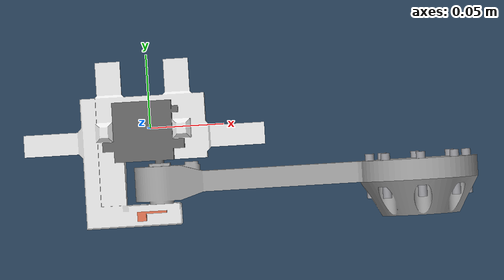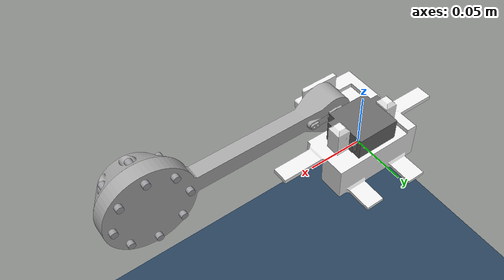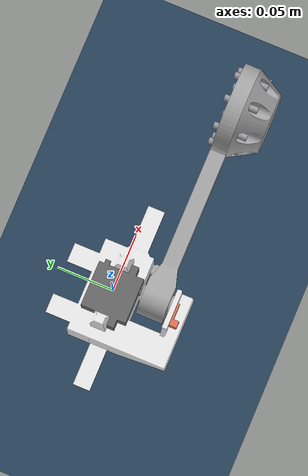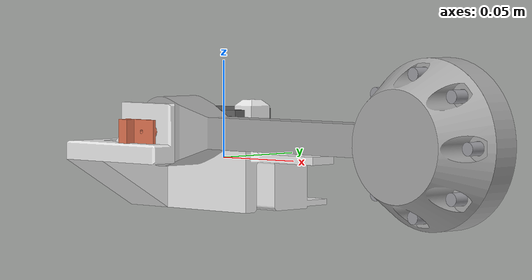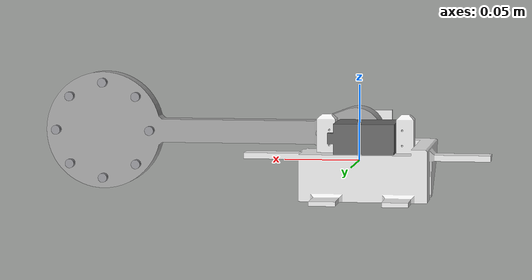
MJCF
<mujoco model="miuzei_servo">
  <compiler angle="radian" meshdir="meshes" autolimits="true" />

  <option timestep="0.002" gravity="0 0 -9.8" integrator="implicitfast">
    <!-- Fixed base + single hinge; visual geoms don't collide, so there are no
         contacts to compute. Skipping collision detection speeds up stepping. -->
    <flag contact="disable" />
  </option>

  <default>
    <!-- Miuzei 25kg servo actuator model -->

    <default class="onshape_export">
      <joint frictionloss="0.1" armature="0.005" />
      <position kp="50" dampratio="1" />
      <default class="visual">
        <geom group="2" contype="0" conaffinity="0" />
      </default>
      <default class="collision">
        <geom group="3" />
      </default>
    </default>
  </default>

  <visual>
    <headlight diffuse="0.6 0.6 0.6" ambient="0.3 0.3 0.3" specular="0 0 0" />
    <rgba haze="0.15 0.25 0.35 1" />
    <global azimuth="160" elevation="-0.2" />
  </visual>

  <asset>
    <!-- Scene textures / materials -->
    <texture type="skybox" builtin="gradient" rgb1="0.3 0.5 0.7" rgb2="0 0 0" width="512"
      height="3072" />
    <texture type="2d" name="groundplane" builtin="checker" mark="edge" rgb1="0.2 0.3 0.4"
      rgb2="0.1 0.2 0.3" markrgb="0.8 0.8 0.8" width="300" height="300" />
    <material name="groundplane" texture="groundplane" texuniform="true" texrepeat="5 5"
      reflectance="0.2" />

    <!-- Robot meshes -->
    <mesh name="servo" file="servo.stl" />
    <mesh name="servo_horn" file="servo_horn.stl" />
    <mesh name="servo_support" file="servo_support.stl" />
    <mesh name="arm" file="arm.stl" />
    <mesh name="sensor" file="sensor.stl" />
    <mesh name="screw_0" file="screw_0.stl" />
    <mesh name="screw_1" file="screw_1.stl" />
    <mesh name="screw_2" file="screw_2.stl" />
    <mesh name="screw_3" file="screw_3.stl" />
    <mesh name="screw_4" file="screw_4.stl" />
    <mesh name="screw_5" file="screw_5.stl" />
    <mesh name="screw_6" file="screw_6.stl" />
    <mesh name="screw_7" file="screw_7.stl" />
    <mesh name="weight" file="weight.stl" />
    <mesh name="weight_holder" file="weight_holder.stl" />

    <!-- Robot materials -->
    <material name="servo_material" rgba="0.4 0.4 0.4 1" />
    <material name="servo_horn_material" rgba="0.647059 0.647059 0.647059 1" />
    <material name="servo_support_material" rgba="0.917647 0.917647 0.917647 1" />
    <material name="arm_material" rgba="0.647059 0.647059 0.647059 1" />
    <material name="sensor_material" rgba="0.87451 0.447059 0.317647 1" />
    <material name="screw_material" rgba="0.6 0.6 0.62 1" />
    <material name="weight_material" rgba="0.3 0.3 0.32 1" />
    <material name="weight_holder_material" rgba="0.647059 0.647059 0.647059 1" />
  </asset>

  <worldbody>
    <light pos="0 0 3.5" dir="0 0 -0.1" directional="true" />
    <camera name="track" mode="trackcom" pos="-0.5 -0.5 0.35"
      xyaxes="0.7071 -0.7071 0 0.4082 0.4082 0.8165" />
    <geom name="floor" size="0 0 0.05" pos="0 0 -0.23" type="plane" material="groundplane"
      friction="1.0 0.005 0.0001" />

    <!-- Fixed base: servo + support + sensor rigidly mounted together, support anchors to world -->
    <body name="base" pos="0 0 0" childclass="onshape_export">
      <geom type="mesh" class="visual" mesh="servo_support" material="servo_support_material" pos="0 0 0" />
      <geom type="mesh" class="visual" mesh="servo" material="servo_material" pos="0 0 0" />
      <geom type="mesh" class="visual" mesh="sensor" material="sensor_material" pos="0 0 0" />

      <!-- Moving output: servo horn + arm fixed together, driven by the servo joint -->
      <!-- x=5.5mm, y=-30.1mm,  z=15.35mm -->
      <body name="horn" pos="0 0 0">
        <!-- axis is -y so gravity swings the arm toward NEGATIVE qpos, matching the
             (sign-negated) hardware encoder: +command -> +reading, gravity -> -reading. -->
        <joint name="servo" type="hinge" axis="0 -1 0" pos="0.0055 0.0301 0.01535" range="-1.963 1.963"/>
        <geom type="mesh" class="visual" mesh="servo_horn" material="servo_horn_material" pos="0 0 0" />
        <geom type="mesh" class="visual" mesh="arm" material="arm_material" pos="0 0 0" mass="0.031"/>
        <geom type="mesh" class="visual" mesh="screw_0" material="screw_material" mass="0.009"/>
        <geom type="mesh" class="visual" mesh="screw_1" material="screw_material" mass="0.009"/>
        <geom type="mesh" class="visual" mesh="screw_2" material="screw_material" mass="0.009"/>
        <geom type="mesh" class="visual" mesh="screw_3" material="screw_material" mass="0.009"/>
        <geom type="mesh" class="visual" mesh="screw_4" material="screw_material" mass="0.009"/>
        <geom type="mesh" class="visual" mesh="screw_5" material="screw_material" mass="0.009"/>
        <geom type="mesh" class="visual" mesh="screw_6" material="screw_material" mass="0.009"/>
        <geom type="mesh" class="visual" mesh="screw_7" material="screw_material" mass="0.009"/>
        <geom type="mesh" class="visual" mesh="weight_holder" material="weight_holder_material" pos="0 0 0" mass="0.022"/>
        <geom type="mesh" class="visual" mesh="weight" material="weight_material" pos="0 0 0" mass="0.227"/>
      </body>
    </body>
  </worldbody>

  <actuator>
    <position
        name="servo"
        joint="servo"
        group="1"
        kp="25"
        kv="5"
        ctrlrange="-1.963 1.963"
        ctrllimited="true"
        forcerange="-2.70 2.70"
        forcelimited="true"
    />
  </actuator>

  <sensor>
    <jointpos name="servo-pos" joint="servo" />
  </sensor>
</mujoco>
